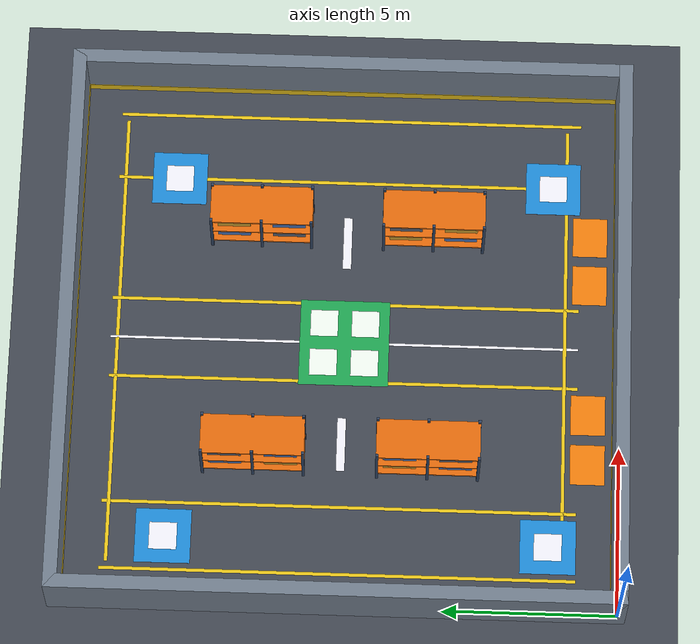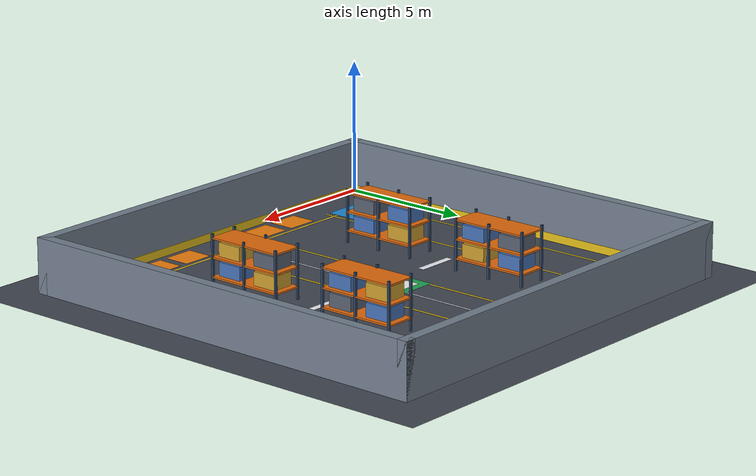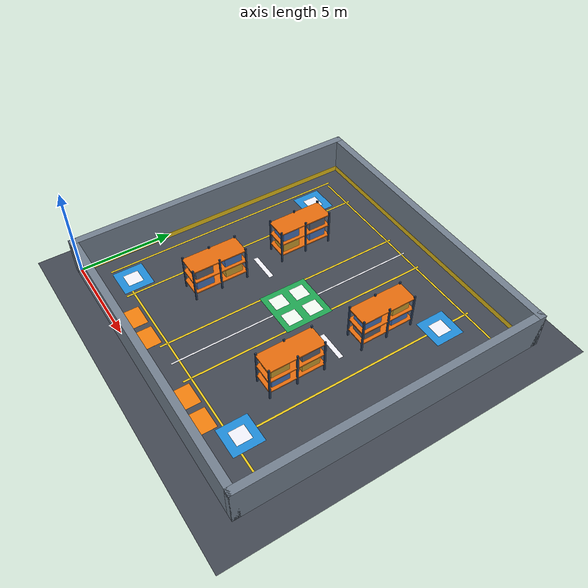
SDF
<?xml version="1.0" ?>
<sdf version="1.8">
  <world name="warehouse_small">

    <!-- Physics Configuration (Preserved exactly from M1/M2) -->
    <physics name="default_physics" type="dart">
      <max_step_size>0.005</max_step_size>
      <real_time_factor>1.0</real_time_factor>
    </physics>

    <!-- Essential System Plugins for Gazebo Harmonic -->
    <plugin filename="gz-sim-physics-system" name="gz::sim::systems::Physics"/>
    <plugin filename="gz-sim-user-commands-system" name="gz::sim::systems::UserCommands"/>
    <plugin filename="gz-sim-scene-broadcaster-system" name="gz::sim::systems::SceneBroadcaster"/>
    <plugin filename="gz-sim-sensors-system" name="gz::sim::systems::Sensors">
      <render_engine>ogre2</render_engine>
    </plugin>

    <!-- Deterministic Demonstration Camera and GUI Viewport -->
    <gui fullscreen="false">
      <plugin name="3D View" filename="GzScene3D">
        <gz-gui>
          <title>3D View</title>
          <property type="bool" key="showTitleBar">0</property>
          <property type="string" key="state">docked</property>
        </gz-gui>
        <engine>ogre2</engine>
        <scene>scene</scene>
        <ambient_light>0.55 0.57 0.60 1.0</ambient_light>
        <background_color>0.82 0.86 0.90 1.0</background_color>
        <!-- Centered on operational core (8.0, 8.0) with isometric ~53 deg downward pitch -->
        <camera_pose>8.0 -3.5 16.5 0 0.92 1.5708</camera_pose>
      </plugin>
      <plugin name="World control" filename="WorldControl">
        <gz-gui>
          <title>World control</title>
          <property type="bool" key="showTitleBar">0</property>
          <property type="bool" key="resizable">0</property>
          <property type="double" key="height">72</property>
          <property type="double" key="width">121</property>
          <property type="double" key="z">1</property>
          <property type="string" key="state">floating</property>
          <anchors target="3D View">
            <line own="left" target="left"/>
            <line own="bottom" target="bottom"/>
          </anchors>
        </gz-gui>
        <play_pause>1</play_pause>
        <step>1</step>
        <start_paused>0</start_paused>
      </plugin>
      <plugin name="World stats" filename="WorldStats">
        <gz-gui>
          <title>World stats</title>
          <property type="bool" key="showTitleBar">0</property>
          <property type="bool" key="resizable">0</property>
          <property type="double" key="height">110</property>
          <property type="double" key="width">290</property>
          <property type="double" key="z">1</property>
          <property type="string" key="state">floating</property>
          <anchors target="3D View">
            <line own="right" target="right"/>
            <line own="bottom" target="bottom"/>
          </anchors>
        </gz-gui>
        <sim_time>1</sim_time>
        <real_time>1</real_time>
        <real_time_factor>1</real_time_factor>
        <iterations>1</iterations>
      </plugin>
    </gui>

    <!-- Scene Lighting & Visual Tuning -->
    <scene>
      <ambient>0.52 0.54 0.58 1.0</ambient>
      <background>0.82 0.86 0.90 1.0</background>
      <shadows>true</shadows>
      <grid>false</grid>
    </scene>

    <!-- Primary Warehouse Overhead Illumination -->
    <light type="directional" name="sun">
      <cast_shadows>true</cast_shadows>
      <pose>8.0 8.0 15.0 0 0 0</pose>
      <diffuse>0.88 0.88 0.90 1.0</diffuse>
      <specular>0.25 0.25 0.25 1.0</specular>
      <direction>-0.3 0.2 -0.92</direction>
    </light>

    <!-- Auxiliary Fill Light for Uniform Facility Visibility -->
    <light type="directional" name="fill_light">
      <cast_shadows>false</cast_shadows>
      <pose>8.0 8.0 12.0 0 0 0</pose>
      <diffuse>0.35 0.36 0.40 1.0</diffuse>
      <direction>0.3 -0.2 -0.92</direction>
    </light>

    <!-- Warehouse Floor (Industrial Slate-Grey Epoxy Finish) -->
    <model name="ground_plane">
      <static>true</static>
      <pose>8.0 8.0 0.0 0 0 0</pose>
      <link name="floor_link">
        <collision name="collision">
          <geometry>
            <plane>
              <normal>0 0 1</normal>
              <size>24 24</size>
            </plane>
          </geometry>
          <surface>
            <friction>
              <ode>
                <mu>100</mu>
                <mu2>50</mu2>
              </ode>
            </friction>
          </surface>
        </collision>
        <visual name="floor_visual">
          <geometry>
            <plane>
              <normal>0 0 1</normal>
              <size>24 24</size>
            </plane>
          </geometry>
          <material>
            <ambient>0.22 0.24 0.27 1.0</ambient>
            <diffuse>0.26 0.28 0.32 1.0</diffuse>
            <specular>0.45 0.45 0.50 1.0</specular>
          </material>
        </visual>
      </link>
    </model>

    <!-- Warehouse Boundary Perimeter Walls (16m x 16m interior centered at 8.0, 8.0) -->
    <!-- North Wall -->
    <model name="wall_north">
      <static>true</static>
      <pose>8.0 16.0 1.0 0 0 0</pose>
      <link name="link">
        <collision name="col"><geometry><box><size>16.4 0.4 2.0</size></box></geometry></collision>
        <visual name="wall_vis">
          <geometry><box><size>16.4 0.4 2.0</size></box></geometry>
          <material><ambient>0.40 0.44 0.50 1.0</ambient><diffuse>0.45 0.50 0.56 1.0</diffuse></material>
        </visual>
        <!-- Safety Kickplate Stripe -->
        <visual name="kickplate">
          <pose>0.0 -0.201 -0.85 0 0 0</pose>
          <geometry><box><size>16.38 0.02 0.30</size></box></geometry>
          <material><ambient>0.85 0.70 0.10 1.0</ambient><diffuse>0.90 0.75 0.10 1.0</diffuse></material>
        </visual>
      </link>
    </model>

    <!-- South Wall -->
    <model name="wall_south">
      <static>true</static>
      <pose>8.0 0.0 1.0 0 0 0</pose>
      <link name="link">
        <collision name="col"><geometry><box><size>16.4 0.4 2.0</size></box></geometry></collision>
        <visual name="wall_vis">
          <geometry><box><size>16.4 0.4 2.0</size></box></geometry>
          <material><ambient>0.40 0.44 0.50 1.0</ambient><diffuse>0.45 0.50 0.56 1.0</diffuse></material>
        </visual>
        <visual name="kickplate">
          <pose>0.0 0.201 -0.85 0 0 0</pose>
          <geometry><box><size>16.38 0.02 0.30</size></box></geometry>
          <material><ambient>0.85 0.70 0.10 1.0</ambient><diffuse>0.90 0.75 0.10 1.0</diffuse></material>
        </visual>
      </link>
    </model>

    <!-- East Wall -->
    <model name="wall_east">
      <static>true</static>
      <pose>16.0 8.0 1.0 0 0 0</pose>
      <link name="link">
        <collision name="col"><geometry><box><size>0.4 16.4 2.0</size></box></geometry></collision>
        <visual name="wall_vis">
          <geometry><box><size>0.4 16.4 2.0</size></box></geometry>
          <material><ambient>0.40 0.44 0.50 1.0</ambient><diffuse>0.45 0.50 0.56 1.0</diffuse></material>
        </visual>
        <visual name="kickplate">
          <pose>-0.201 0.0 -0.85 0 0 0</pose>
          <geometry><box><size>0.02 16.38 0.30</size></box></geometry>
          <material><ambient>0.85 0.70 0.10 1.0</ambient><diffuse>0.90 0.75 0.10 1.0</diffuse></material>
        </visual>
      </link>
    </model>

    <!-- West Wall -->
    <model name="wall_west">
      <static>true</static>
      <pose>0.0 8.0 1.0 0 0 0</pose>
      <link name="link">
        <collision name="col"><geometry><box><size>0.4 16.4 2.0</size></box></geometry></collision>
        <visual name="wall_vis">
          <geometry><box><size>0.4 16.4 2.0</size></box></geometry>
          <material><ambient>0.40 0.44 0.50 1.0</ambient><diffuse>0.45 0.50 0.56 1.0</diffuse></material>
        </visual>
        <visual name="kickplate">
          <pose>0.201 0.0 -0.85 0 0 0</pose>
          <geometry><box><size>0.02 16.38 0.30</size></box></geometry>
          <material><ambient>0.85 0.70 0.10 1.0</ambient><diffuse>0.90 0.75 0.10 1.0</diffuse></material>
        </visual>
      </link>
    </model>

    <!-- WAREHOUSE FLOOR MARKINGS & AISLE LANES (Pure Visual Geometry)     -->
    <model name="warehouse_lanes">
      <static>true</static>
      <pose>0 0 0.002 0 0 0</pose>
      <link name="markings_link">
        <!-- Western Corridor Lane Lines (Aisle 1 - Staging & Pickup) -->
        <visual name="lane_west_left">
          <pose>1.0 8.0 0 0 0 0</pose>
          <geometry><box><size>0.10 13.6 0.001</size></box></geometry>
          <material><ambient>0.88 0.72 0.08 1.0</ambient><diffuse>0.92 0.78 0.10 1.0</diffuse></material>
        </visual>
        <visual name="lane_west_right">
          <pose>3.0 8.0 0 0 0 0</pose>
          <geometry><box><size>0.10 13.6 0.001</size></box></geometry>
          <material><ambient>0.88 0.72 0.08 1.0</ambient><diffuse>0.92 0.78 0.10 1.0</diffuse></material>
        </visual>

        <!-- Central Arterial Highway Lines (Aisle 2 - High Speed Transit) -->
        <visual name="lane_center_left">
          <pose>6.8 8.0 0 0 0 0</pose>
          <geometry><box><size>0.10 13.6 0.001</size></box></geometry>
          <material><ambient>0.88 0.72 0.08 1.0</ambient><diffuse>0.92 0.78 0.10 1.0</diffuse></material>
        </visual>
        <visual name="lane_center_divider">
          <pose>8.0 8.0 0 0 0 0</pose>
          <geometry><box><size>0.08 13.6 0.001</size></box></geometry>
          <material><ambient>0.90 0.90 0.92 1.0</ambient><diffuse>0.95 0.95 0.98 1.0</diffuse></material>
        </visual>
        <visual name="lane_center_right">
          <pose>9.2 8.0 0 0 0 0</pose>
          <geometry><box><size>0.10 13.6 0.001</size></box></geometry>
          <material><ambient>0.88 0.72 0.08 1.0</ambient><diffuse>0.92 0.78 0.10 1.0</diffuse></material>
        </visual>

        <!-- Eastern Corridor Lane Lines (Aisle 3 - Logistics & Storage) -->
        <visual name="lane_east_left">
          <pose>13.0 8.0 0 0 0 0</pose>
          <geometry><box><size>0.10 13.6 0.001</size></box></geometry>
          <material><ambient>0.88 0.72 0.08 1.0</ambient><diffuse>0.92 0.78 0.10 1.0</diffuse></material>
        </visual>
        <visual name="lane_east_right">
          <pose>15.0 8.0 0 0 0 0</pose>
          <geometry><box><size>0.10 13.6 0.001</size></box></geometry>
          <material><ambient>0.88 0.72 0.08 1.0</ambient><diffuse>0.92 0.78 0.10 1.0</diffuse></material>
        </visual>

        <!-- Cross-Aisle Transits (North & South Connecting Highways) -->
        <visual name="cross_aisle_north">
          <pose>8.0 14.6 0 0 0 0</pose>
          <geometry><box><size>13.6 0.10 0.001</size></box></geometry>
          <material><ambient>0.88 0.72 0.08 1.0</ambient><diffuse>0.92 0.78 0.10 1.0</diffuse></material>
        </visual>
        <visual name="cross_aisle_south">
          <pose>8.0 1.6 0 0 0 0</pose>
          <geometry><box><size>13.6 0.10 0.001</size></box></geometry>
          <material><ambient>0.88 0.72 0.08 1.0</ambient><diffuse>0.92 0.78 0.10 1.0</diffuse></material>
        </visual>

        <!-- Safety Pedestrian Crosswalk Hatching (Center East-West Transit) -->
        <visual name="crosswalk_1">
          <pose>4.9 8.0 0 0 0 0</pose>
          <geometry><box><size>1.6 0.25 0.001</size></box></geometry>
          <material><ambient>0.90 0.90 0.92 1.0</ambient><diffuse>0.95 0.95 0.98 1.0</diffuse></material>
        </visual>
        <visual name="crosswalk_2">
          <pose>11.1 8.0 0 0 0 0</pose>
          <geometry><box><size>1.6 0.25 0.001</size></box></geometry>
          <material><ambient>0.90 0.90 0.92 1.0</ambient><diffuse>0.95 0.95 0.98 1.0</diffuse></material>
        </visual>
      </link>
    </model>

    <!-- OPERATIONAL ZONES (Pickups, Dropoff Hub, Charging Bays, Tables)   -->
    <model name="operational_zones">
      <static>true</static>
      <pose>0 0 0.003 0 0 0</pose>
      <link name="zones_link">
        <!-- 1. PICKUP STATION 1 (South-West [2.0, 2.0]) -->
        <visual name="pickup_1_pad">
          <pose>2.0 2.0 0 0 0 0</pose>
          <geometry><box><size>1.6 1.6 0.002</size></box></geometry>
          <material><ambient>0.10 0.45 0.75 1.0</ambient><diffuse>0.12 0.55 0.85 1.0</diffuse></material>
        </visual>
        <visual name="pickup_1_target">
          <pose>2.0 2.0 0.001 0 0 0</pose>
          <geometry><box><size>0.80 0.80 0.002</size></box></geometry>
          <material><ambient>0.90 0.90 0.95 1.0</ambient><diffuse>0.95 0.95 0.98 1.0</diffuse></material>
        </visual>

        <!-- 2. PICKUP STATION 2 (North-West [2.0, 13.0]) -->
        <visual name="pickup_2_pad">
          <pose>2.0 13.0 0 0 0 0</pose>
          <geometry><box><size>1.6 1.6 0.002</size></box></geometry>
          <material><ambient>0.10 0.45 0.75 1.0</ambient><diffuse>0.12 0.55 0.85 1.0</diffuse></material>
        </visual>
        <visual name="pickup_2_target">
          <pose>2.0 13.0 0.001 0 0 0</pose>
          <geometry><box><size>0.80 0.80 0.002</size></box></geometry>
          <material><ambient>0.90 0.90 0.95 1.0</ambient><diffuse>0.95 0.95 0.98 1.0</diffuse></material>
        </visual>

        <!-- 3. PICKUP STATION 3 (South-East [13.0, 2.0]) -->
        <visual name="pickup_3_pad">
          <pose>13.0 2.0 0 0 0 0</pose>
          <geometry><box><size>1.6 1.6 0.002</size></box></geometry>
          <material><ambient>0.10 0.45 0.75 1.0</ambient><diffuse>0.12 0.55 0.85 1.0</diffuse></material>
        </visual>
        <visual name="pickup_3_target">
          <pose>13.0 2.0 0.001 0 0 0</pose>
          <geometry><box><size>0.80 0.80 0.002</size></box></geometry>
          <material><ambient>0.90 0.90 0.95 1.0</ambient><diffuse>0.95 0.95 0.98 1.0</diffuse></material>
        </visual>

        <!-- 4. PICKUP STATION 4 (North-East [13.0, 13.0]) -->
        <visual name="pickup_4_pad">
          <pose>13.0 13.0 0 0 0 0</pose>
          <geometry><box><size>1.6 1.6 0.002</size></box></geometry>
          <material><ambient>0.10 0.45 0.75 1.0</ambient><diffuse>0.12 0.55 0.85 1.0</diffuse></material>
        </visual>
        <visual name="pickup_4_target">
          <pose>13.0 13.0 0.001 0 0 0</pose>
          <geometry><box><size>0.80 0.80 0.002</size></box></geometry>
          <material><ambient>0.90 0.90 0.95 1.0</ambient><diffuse>0.95 0.95 0.98 1.0</diffuse></material>
        </visual>

        <!-- 5. CENTRAL SORTING & DROPOFF HUB ([7.5, 7.5]) -->
        <visual name="dropoff_hub_pad">
          <pose>8.0 8.0 0 0 0 0</pose>
          <geometry><box><size>2.6 2.6 0.002</size></box></geometry>
          <material><ambient>0.10 0.55 0.28 1.0</ambient><diffuse>0.12 0.65 0.32 1.0</diffuse></material>
        </visual>
        <visual name="dropoff_bay_1">
          <pose>7.4 7.4 0.001 0 0 0</pose>
          <geometry><box><size>0.80 0.80 0.002</size></box></geometry>
          <material><ambient>0.90 0.95 0.90 1.0</ambient><diffuse>0.95 0.98 0.95 1.0</diffuse></material>
        </visual>
        <visual name="dropoff_bay_2">
          <pose>7.4 8.6 0.001 0 0 0</pose>
          <geometry><box><size>0.80 0.80 0.002</size></box></geometry>
          <material><ambient>0.90 0.95 0.90 1.0</ambient><diffuse>0.95 0.98 0.95 1.0</diffuse></material>
        </visual>
        <visual name="dropoff_bay_3">
          <pose>8.6 7.4 0.001 0 0 0</pose>
          <geometry><box><size>0.80 0.80 0.002</size></box></geometry>
          <material><ambient>0.90 0.95 0.90 1.0</ambient><diffuse>0.95 0.98 0.95 1.0</diffuse></material>
        </visual>
        <visual name="dropoff_bay_4">
          <pose>8.6 8.6 0.001 0 0 0</pose>
          <geometry><box><size>0.80 0.80 0.002</size></box></geometry>
          <material><ambient>0.90 0.95 0.90 1.0</ambient><diffuse>0.95 0.98 0.95 1.0</diffuse></material>
        </visual>

        <!-- 6. FLEET CHARGING & MAINTENANCE PADS (South Perimeter) -->
        <visual name="charge_pad_1">
          <pose>4.5 0.9 0 0 0 0</pose>
          <geometry><box><size>1.2 1.0 0.002</size></box></geometry>
          <material><ambient>0.85 0.45 0.05 1.0</ambient><diffuse>0.95 0.50 0.05 1.0</diffuse></material>
        </visual>
        <visual name="charge_pad_2">
          <pose>6.0 0.9 0 0 0 0</pose>
          <geometry><box><size>1.2 1.0 0.002</size></box></geometry>
          <material><ambient>0.85 0.45 0.05 1.0</ambient><diffuse>0.95 0.50 0.05 1.0</diffuse></material>
        </visual>
        <visual name="charge_pad_3">
          <pose>10.0 0.9 0 0 0 0</pose>
          <geometry><box><size>1.2 1.0 0.002</size></box></geometry>
          <material><ambient>0.85 0.45 0.05 1.0</ambient><diffuse>0.95 0.50 0.05 1.0</diffuse></material>
        </visual>
        <visual name="charge_pad_4">
          <pose>11.5 0.9 0 0 0 0</pose>
          <geometry><box><size>1.2 1.0 0.002</size></box></geometry>
          <material><ambient>0.85 0.45 0.05 1.0</ambient><diffuse>0.95 0.50 0.05 1.0</diffuse></material>
        </visual>
      </link>
    </model>

    <!-- REALISTIC INDUSTRIAL STORAGE RACKS (Identical Collision Bounding) -->
    <!-- RACK 1 (South-West: Center [4.5, 5.5, 1.0], Collision Size: [1.2, 3.0, 2.0]) -->
    <model name="rack_1">
      <static>true</static>
      <pose>4.5 5.5 1.0 0 0 0</pose>
      <link name="link">
        <!-- Exact Collision Box Preserved from M1/M2/YAML -->
        <collision name="col"><geometry><box><size>1.2 3.0 2.0</size></box></geometry></collision>

        <!-- Upright Steel Frames (Industrial Blue) -->
        <visual name="frame_fl"><pose>-0.55 -1.45 0 0 0 0</pose><geometry><box><size>0.08 0.08 2.0</size></box></geometry><material><ambient>0.15 0.22 0.32 1.0</ambient><diffuse>0.18 0.26 0.38 1.0</diffuse></material></visual>
        <visual name="frame_fr"><pose>0.55 -1.45 0 0 0 0</pose><geometry><box><size>0.08 0.08 2.0</size></box></geometry><material><ambient>0.15 0.22 0.32 1.0</ambient><diffuse>0.18 0.26 0.38 1.0</diffuse></material></visual>
        <visual name="frame_rl"><pose>-0.55 1.45 0 0 0 0</pose><geometry><box><size>0.08 0.08 2.0</size></box></geometry><material><ambient>0.15 0.22 0.32 1.0</ambient><diffuse>0.18 0.26 0.38 1.0</diffuse></material></visual>
        <visual name="frame_rr"><pose>0.55 1.45 0 0 0 0</pose><geometry><box><size>0.08 0.08 2.0</size></box></geometry><material><ambient>0.15 0.22 0.32 1.0</ambient><diffuse>0.18 0.26 0.38 1.0</diffuse></material></visual>
        <visual name="frame_ml"><pose>-0.55 0.0 0 0 0 0</pose><geometry><box><size>0.08 0.08 2.0</size></box></geometry><material><ambient>0.15 0.22 0.32 1.0</ambient><diffuse>0.18 0.26 0.38 1.0</diffuse></material></visual>
        <visual name="frame_mr"><pose>0.55 0.0 0 0 0 0</pose><geometry><box><size>0.08 0.08 2.0</size></box></geometry><material><ambient>0.15 0.22 0.32 1.0</ambient><diffuse>0.18 0.26 0.38 1.0</diffuse></material></visual>

        <!-- Horizontal Shelving Beams (Safety Orange) -->
        <visual name="shelf_tier1"><pose>0 0 -0.55 0 0 0</pose><geometry><box><size>1.16 2.96 0.06</size></box></geometry><material><ambient>0.85 0.38 0.05 1.0</ambient><diffuse>0.90 0.42 0.05 1.0</diffuse></material></visual>
        <visual name="shelf_tier2"><pose>0 0 0.15 0 0 0</pose><geometry><box><size>1.16 2.96 0.06</size></box></geometry><material><ambient>0.85 0.38 0.05 1.0</ambient><diffuse>0.90 0.42 0.05 1.0</diffuse></material></visual>
        <visual name="shelf_tier3"><pose>0 0 0.85 0 0 0</pose><geometry><box><size>1.16 2.96 0.06</size></box></geometry><material><ambient>0.85 0.38 0.05 1.0</ambient><diffuse>0.90 0.42 0.05 1.0</diffuse></material></visual>

        <!-- Pallet Cargo Totes on Shelves -->
        <visual name="cargo_1_1"><pose>0 -0.8 -0.25 0 0 0</pose><geometry><box><size>0.85 0.95 0.50</size></box></geometry><material><ambient>0.25 0.40 0.65 1.0</ambient><diffuse>0.28 0.45 0.72 1.0</diffuse></material></visual>
        <visual name="cargo_1_2"><pose>0 0.8 -0.25 0 0 0</pose><geometry><box><size>0.85 0.95 0.50</size></box></geometry><material><ambient>0.70 0.55 0.15 1.0</ambient><diffuse>0.80 0.62 0.18 1.0</diffuse></material></visual>
        <visual name="cargo_2_1"><pose>0 -0.8 0.45 0 0 0</pose><geometry><box><size>0.85 0.95 0.50</size></box></geometry><material><ambient>0.30 0.34 0.38 1.0</ambient><diffuse>0.35 0.38 0.44 1.0</diffuse></material></visual>
        <visual name="cargo_2_2"><pose>0 0.8 0.45 0 0 0</pose><geometry><box><size>0.85 0.95 0.50</size></box></geometry><material><ambient>0.25 0.40 0.65 1.0</ambient><diffuse>0.28 0.45 0.72 1.0</diffuse></material></visual>
      </link>
    </model>

    <!-- RACK 2 (North-West: Center [4.5, 10.5, 1.0], Collision Size: [1.2, 3.0, 2.0]) -->
    <model name="rack_2">
      <static>true</static>
      <pose>4.5 10.5 1.0 0 0 0</pose>
      <link name="link">
        <collision name="col"><geometry><box><size>1.2 3.0 2.0</size></box></geometry></collision>

        <visual name="frame_fl"><pose>-0.55 -1.45 0 0 0 0</pose><geometry><box><size>0.08 0.08 2.0</size></box></geometry><material><ambient>0.15 0.22 0.32 1.0</ambient><diffuse>0.18 0.26 0.38 1.0</diffuse></material></visual>
        <visual name="frame_fr"><pose>0.55 -1.45 0 0 0 0</pose><geometry><box><size>0.08 0.08 2.0</size></box></geometry><material><ambient>0.15 0.22 0.32 1.0</ambient><diffuse>0.18 0.26 0.38 1.0</diffuse></material></visual>
        <visual name="frame_rl"><pose>-0.55 1.45 0 0 0 0</pose><geometry><box><size>0.08 0.08 2.0</size></box></geometry><material><ambient>0.15 0.22 0.32 1.0</ambient><diffuse>0.18 0.26 0.38 1.0</diffuse></material></visual>
        <visual name="frame_rr"><pose>0.55 1.45 0 0 0 0</pose><geometry><box><size>0.08 0.08 2.0</size></box></geometry><material><ambient>0.15 0.22 0.32 1.0</ambient><diffuse>0.18 0.26 0.38 1.0</diffuse></material></visual>
        <visual name="frame_ml"><pose>-0.55 0.0 0 0 0 0</pose><geometry><box><size>0.08 0.08 2.0</size></box></geometry><material><ambient>0.15 0.22 0.32 1.0</ambient><diffuse>0.18 0.26 0.38 1.0</diffuse></material></visual>
        <visual name="frame_mr"><pose>0.55 0.0 0 0 0 0</pose><geometry><box><size>0.08 0.08 2.0</size></box></geometry><material><ambient>0.15 0.22 0.32 1.0</ambient><diffuse>0.18 0.26 0.38 1.0</diffuse></material></visual>

        <visual name="shelf_tier1"><pose>0 0 -0.55 0 0 0</pose><geometry><box><size>1.16 2.96 0.06</size></box></geometry><material><ambient>0.85 0.38 0.05 1.0</ambient><diffuse>0.90 0.42 0.05 1.0</diffuse></material></visual>
        <visual name="shelf_tier2"><pose>0 0 0.15 0 0 0</pose><geometry><box><size>1.16 2.96 0.06</size></box></geometry><material><ambient>0.85 0.38 0.05 1.0</ambient><diffuse>0.90 0.42 0.05 1.0</diffuse></material></visual>
        <visual name="shelf_tier3"><pose>0 0 0.85 0 0 0</pose><geometry><box><size>1.16 2.96 0.06</size></box></geometry><material><ambient>0.85 0.38 0.05 1.0</ambient><diffuse>0.90 0.42 0.05 1.0</diffuse></material></visual>

        <visual name="cargo_1_1"><pose>0 -0.8 -0.25 0 0 0</pose><geometry><box><size>0.85 0.95 0.50</size></box></geometry><material><ambient>0.70 0.55 0.15 1.0</ambient><diffuse>0.80 0.62 0.18 1.0</diffuse></material></visual>
        <visual name="cargo_1_2"><pose>0 0.8 -0.25 0 0 0</pose><geometry><box><size>0.85 0.95 0.50</size></box></geometry><material><ambient>0.25 0.40 0.65 1.0</ambient><diffuse>0.28 0.45 0.72 1.0</diffuse></material></visual>
        <visual name="cargo_2_1"><pose>0 -0.8 0.45 0 0 0</pose><geometry><box><size>0.85 0.95 0.50</size></box></geometry><material><ambient>0.25 0.40 0.65 1.0</ambient><diffuse>0.28 0.45 0.72 1.0</diffuse></material></visual>
        <visual name="cargo_2_2"><pose>0 0.8 0.45 0 0 0</pose><geometry><box><size>0.85 0.95 0.50</size></box></geometry><material><ambient>0.30 0.34 0.38 1.0</ambient><diffuse>0.35 0.38 0.44 1.0</diffuse></material></visual>
      </link>
    </model>

    <!-- RACK 3 (South-East: Center [11.5, 5.5, 1.0], Collision Size: [1.2, 3.0, 2.0]) -->
    <model name="rack_3">
      <static>true</static>
      <pose>11.5 5.5 1.0 0 0 0</pose>
      <link name="link">
        <collision name="col"><geometry><box><size>1.2 3.0 2.0</size></box></geometry></collision>

        <visual name="frame_fl"><pose>-0.55 -1.45 0 0 0 0</pose><geometry><box><size>0.08 0.08 2.0</size></box></geometry><material><ambient>0.15 0.22 0.32 1.0</ambient><diffuse>0.18 0.26 0.38 1.0</diffuse></material></visual>
        <visual name="frame_fr"><pose>0.55 -1.45 0 0 0 0</pose><geometry><box><size>0.08 0.08 2.0</size></box></geometry><material><ambient>0.15 0.22 0.32 1.0</ambient><diffuse>0.18 0.26 0.38 1.0</diffuse></material></visual>
        <visual name="frame_rl"><pose>-0.55 1.45 0 0 0 0</pose><geometry><box><size>0.08 0.08 2.0</size></box></geometry><material><ambient>0.15 0.22 0.32 1.0</ambient><diffuse>0.18 0.26 0.38 1.0</diffuse></material></visual>
        <visual name="frame_rr"><pose>0.55 1.45 0 0 0 0</pose><geometry><box><size>0.08 0.08 2.0</size></box></geometry><material><ambient>0.15 0.22 0.32 1.0</ambient><diffuse>0.18 0.26 0.38 1.0</diffuse></material></visual>
        <visual name="frame_ml"><pose>-0.55 0.0 0 0 0 0</pose><geometry><box><size>0.08 0.08 2.0</size></box></geometry><material><ambient>0.15 0.22 0.32 1.0</ambient><diffuse>0.18 0.26 0.38 1.0</diffuse></material></visual>
        <visual name="frame_mr"><pose>0.55 0.0 0 0 0 0</pose><geometry><box><size>0.08 0.08 2.0</size></box></geometry><material><ambient>0.15 0.22 0.32 1.0</ambient><diffuse>0.18 0.26 0.38 1.0</diffuse></material></visual>

        <visual name="shelf_tier1"><pose>0 0 -0.55 0 0 0</pose><geometry><box><size>1.16 2.96 0.06</size></box></geometry><material><ambient>0.85 0.38 0.05 1.0</ambient><diffuse>0.90 0.42 0.05 1.0</diffuse></material></visual>
        <visual name="shelf_tier2"><pose>0 0 0.15 0 0 0</pose><geometry><box><size>1.16 2.96 0.06</size></box></geometry><material><ambient>0.85 0.38 0.05 1.0</ambient><diffuse>0.90 0.42 0.05 1.0</diffuse></material></visual>
        <visual name="shelf_tier3"><pose>0 0 0.85 0 0 0</pose><geometry><box><size>1.16 2.96 0.06</size></box></geometry><material><ambient>0.85 0.38 0.05 1.0</ambient><diffuse>0.90 0.42 0.05 1.0</diffuse></material></visual>

        <visual name="cargo_1_1"><pose>0 -0.8 -0.25 0 0 0</pose><geometry><box><size>0.85 0.95 0.50</size></box></geometry><material><ambient>0.25 0.40 0.65 1.0</ambient><diffuse>0.28 0.45 0.72 1.0</diffuse></material></visual>
        <visual name="cargo_1_2"><pose>0 0.8 -0.25 0 0 0</pose><geometry><box><size>0.85 0.95 0.50</size></box></geometry><material><ambient>0.70 0.55 0.15 1.0</ambient><diffuse>0.80 0.62 0.18 1.0</diffuse></material></visual>
        <visual name="cargo_2_1"><pose>0 -0.8 0.45 0 0 0</pose><geometry><box><size>0.85 0.95 0.50</size></box></geometry><material><ambient>0.70 0.55 0.15 1.0</ambient><diffuse>0.80 0.62 0.18 1.0</diffuse></material></visual>
        <visual name="cargo_2_2"><pose>0 0.8 0.45 0 0 0</pose><geometry><box><size>0.85 0.95 0.50</size></box></geometry><material><ambient>0.30 0.34 0.38 1.0</ambient><diffuse>0.35 0.38 0.44 1.0</diffuse></material></visual>
      </link>
    </model>

    <!-- RACK 4 (North-East: Center [11.5, 10.5, 1.0], Collision Size: [1.2, 3.0, 2.0]) -->
    <model name="rack_4">
      <static>true</static>
      <pose>11.5 10.5 1.0 0 0 0</pose>
      <link name="link">
        <collision name="col"><geometry><box><size>1.2 3.0 2.0</size></box></geometry></collision>

        <visual name="frame_fl"><pose>-0.55 -1.45 0 0 0 0</pose><geometry><box><size>0.08 0.08 2.0</size></box></geometry><material><ambient>0.15 0.22 0.32 1.0</ambient><diffuse>0.18 0.26 0.38 1.0</diffuse></material></visual>
        <visual name="frame_fr"><pose>0.55 -1.45 0 0 0 0</pose><geometry><box><size>0.08 0.08 2.0</size></box></geometry><material><ambient>0.15 0.22 0.32 1.0</ambient><diffuse>0.18 0.26 0.38 1.0</diffuse></material></visual>
        <visual name="frame_rl"><pose>-0.55 1.45 0 0 0 0</pose><geometry><box><size>0.08 0.08 2.0</size></box></geometry><material><ambient>0.15 0.22 0.32 1.0</ambient><diffuse>0.18 0.26 0.38 1.0</diffuse></material></visual>
        <visual name="frame_rr"><pose>0.55 1.45 0 0 0 0</pose><geometry><box><size>0.08 0.08 2.0</size></box></geometry><material><ambient>0.15 0.22 0.32 1.0</ambient><diffuse>0.18 0.26 0.38 1.0</diffuse></material></visual>
        <visual name="frame_ml"><pose>-0.55 0.0 0 0 0 0</pose><geometry><box><size>0.08 0.08 2.0</size></box></geometry><material><ambient>0.15 0.22 0.32 1.0</ambient><diffuse>0.18 0.26 0.38 1.0</diffuse></material></visual>
        <visual name="frame_mr"><pose>0.55 0.0 0 0 0 0</pose><geometry><box><size>0.08 0.08 2.0</size></box></geometry><material><ambient>0.15 0.22 0.32 1.0</ambient><diffuse>0.18 0.26 0.38 1.0</diffuse></material></visual>

        <visual name="shelf_tier1"><pose>0 0 -0.55 0 0 0</pose><geometry><box><size>1.16 2.96 0.06</size></box></geometry><material><ambient>0.85 0.38 0.05 1.0</ambient><diffuse>0.90 0.42 0.05 1.0</diffuse></material></visual>
        <visual name="shelf_tier2"><pose>0 0 0.15 0 0 0</pose><geometry><box><size>1.16 2.96 0.06</size></box></geometry><material><ambient>0.85 0.38 0.05 1.0</ambient><diffuse>0.90 0.42 0.05 1.0</diffuse></material></visual>
        <visual name="shelf_tier3"><pose>0 0 0.85 0 0 0</pose><geometry><box><size>1.16 2.96 0.06</size></box></geometry><material><ambient>0.85 0.38 0.05 1.0</ambient><diffuse>0.90 0.42 0.05 1.0</diffuse></material></visual>

        <visual name="cargo_1_1"><pose>0 -0.8 -0.25 0 0 0</pose><geometry><box><size>0.85 0.95 0.50</size></box></geometry><material><ambient>0.30 0.34 0.38 1.0</ambient><diffuse>0.35 0.38 0.44 1.0</diffuse></material></visual>
        <visual name="cargo_1_2"><pose>0 0.8 -0.25 0 0 0</pose><geometry><box><size>0.85 0.95 0.50</size></box></geometry><material><ambient>0.25 0.40 0.65 1.0</ambient><diffuse>0.28 0.45 0.72 1.0</diffuse></material></visual>
        <visual name="cargo_2_1"><pose>0 -0.8 0.45 0 0 0</pose><geometry><box><size>0.85 0.95 0.50</size></box></geometry><material><ambient>0.25 0.40 0.65 1.0</ambient><diffuse>0.28 0.45 0.72 1.0</diffuse></material></visual>
        <visual name="cargo_2_2"><pose>0 0.8 0.45 0 0 0</pose><geometry><box><size>0.85 0.95 0.50</size></box></geometry><material><ambient>0.70 0.55 0.15 1.0</ambient><diffuse>0.80 0.62 0.18 1.0</diffuse></material></visual>
      </link>
    </model>

  </world>
</sdf>
